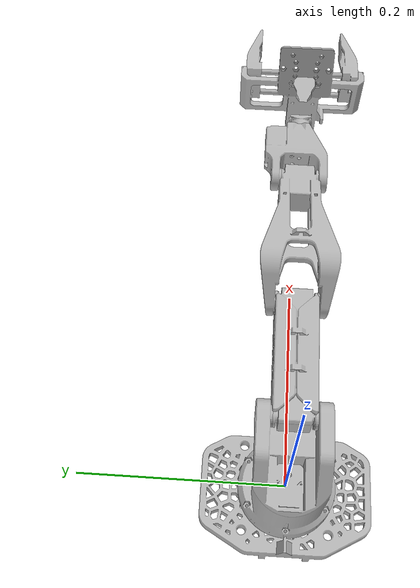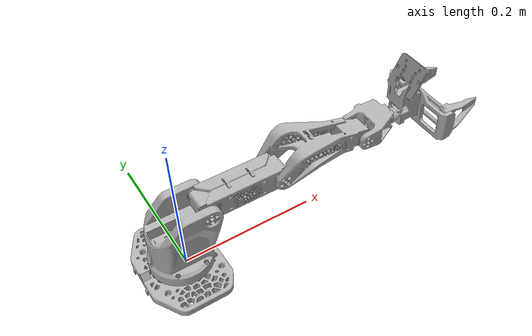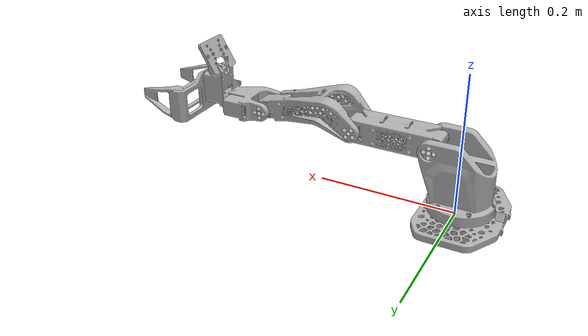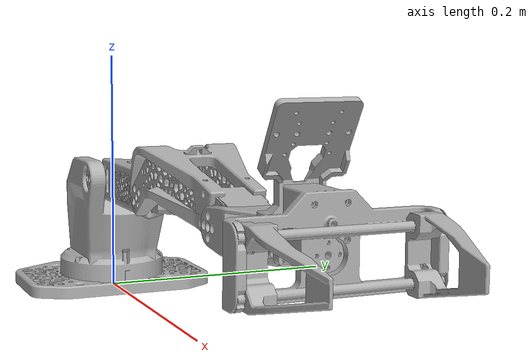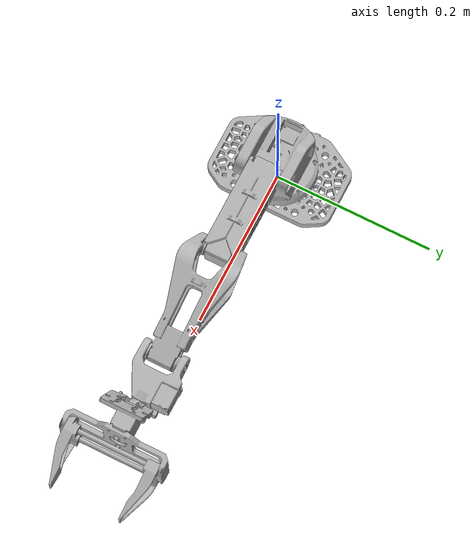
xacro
<?xml version="1.0" ?>
<!-- PROVISIONAL SIMULATION INERTIALS: measured total; assumed mass placement, original CAD centers and scaled tensors. NOT FOR HARDWARE FEEDFORWARD. -->
<robot name="so-arm" xmlns:xacro="http://www.ros.org/wiki/xacro">

<xacro:include filename="$(find so-arm_description)/urdf/materials.xacro" />
<xacro:include filename="$(find so-arm_description)/urdf/so-arm.trans" />

<link name="base_link">
  <inertial>
    <origin xyz="-0.009406544829903572 6.007217489668264e-05 0.008235205211362326" rpy="0 0 0"/>
    <mass value="0.285"/>
    <inertia ixx="0.000448204647604516" iyy="0.000271602923134611" izz="0.000696356393234993" ixy="4.78595459268037e-07" iyz="0" ixz="-2.15367956670616e-06"/>
  </inertial>
  <visual>
    <origin xyz="0 0 0" rpy="0 0 0"/>
    <geometry>
      <mesh filename="package://so-arm_description/meshes/base_link.stl" scale="0.001 0.001 0.001"/>
    </geometry>
    <material name="silver"/>
  </visual>
  <collision>
    <origin xyz="0 0 0" rpy="0 0 0"/>
    <geometry>
      <mesh filename="package://so-arm_description/meshes/base_link.stl" scale="0.001 0.001 0.001"/>
    </geometry>
  </collision>
</link>

<link name="link1_1">
  <inertial>
    <origin xyz="0.005464885749287921 -1.2675422346798214e-05 0.03240352538520035" rpy="0 0 0"/>
    <mass value="0.398"/>
    <inertia ixx="0.000440211154263732" iyy="0.000498657267965414" izz="0.000429729936305072" ixy="1.77647762011191e-07" iyz="1.77647762011191e-07" ixz="-6.44861376100624e-05"/>
  </inertial>
  <visual>
    <origin xyz="0.006 0.0 -0.025" rpy="0 0 0"/>
    <geometry>
      <mesh filename="package://so-arm_description/meshes/link1_1.stl" scale="0.001 0.001 0.001"/>
    </geometry>
    <material name="silver"/>
  </visual>
  <collision>
    <origin xyz="0.006 0.0 -0.025" rpy="0 0 0"/>
    <geometry>
      <mesh filename="package://so-arm_description/meshes/link1_1.stl" scale="0.001 0.001 0.001"/>
    </geometry>
  </collision>
</link>

<link name="link2_1">
  <inertial>
    <origin xyz="0.056505092817969824 0.017999730747229378 0.00011963824154033464" rpy="0 0 0"/>
    <mass value="0.137"/>
    <inertia ixx="3.22066856632768e-05" iyy="0.000216712783191879" izz="0.000220670384396265" ixy="2.18350411276453e-06" iyz="-0" ixz="0"/>
  </inertial>
  <visual>
    <origin xyz="-0.034 0.018 -0.098357" rpy="0 0 0"/>
    <geometry>
      <mesh filename="package://so-arm_description/meshes/link2_1.stl" scale="0.001 0.001 0.001"/>
    </geometry>
    <material name="silver"/>
  </visual>
  <collision>
    <origin xyz="-0.034 0.018 -0.098357" rpy="0 0 0"/>
    <geometry>
      <mesh filename="package://so-arm_description/meshes/link2_1.stl" scale="0.001 0.001 0.001"/>
    </geometry>
  </collision>
</link>

<link name="link3_1">
  <inertial>
    <origin xyz="0.07032572998340453 -0.0180163064459541 0.012228646336233537" rpy="0 0 0"/>
    <mass value="0.17"/>
    <inertia ixx="9.2000121755823e-05" iyy="0.000370560787257684" izz="0.000401967136799561" ixy="6.82746729171228e-07" iyz="-0" ixz="3.68683233752463e-05"/>
  </inertial>
  <visual>
    <origin xyz="-0.147001 -0.018 -0.098323" rpy="0 0 0"/>
    <geometry>
      <mesh filename="package://so-arm_description/meshes/link3_1.stl" scale="0.001 0.001 0.001"/>
    </geometry>
    <material name="silver"/>
  </visual>
  <collision>
    <origin xyz="-0.147001 -0.018 -0.098323" rpy="0 0 0"/>
    <geometry>
      <mesh filename="package://so-arm_description/meshes/link3_1.stl" scale="0.001 0.001 0.001"/>
    </geometry>
  </collision>
</link>

<link name="link4_1">
  <inertial>
    <origin xyz="0.03159105739141316 -0.010094336391021686 -0.0001713219399298166" rpy="0 0 0"/>
    <mass value="0.083"/>
    <inertia ixx="3.10491124013594e-05" iyy="2.98211814024356e-05" izz="4.85909838145568e-05" ixy="-4.91172399569528e-06" iyz="1.75418714131974e-07" ixz="3.50837428263948e-07"/>
  </inertial>
  <visual>
    <origin xyz="-0.286186 -0.018 -0.098287" rpy="0 0 0"/>
    <geometry>
      <mesh filename="package://so-arm_description/meshes/link4_1.stl" scale="0.001 0.001 0.001"/>
    </geometry>
    <material name="silver"/>
  </visual>
  <collision>
    <origin xyz="-0.286186 -0.018 -0.098287" rpy="0 0 0"/>
    <geometry>
      <mesh filename="package://so-arm_description/meshes/link4_1.stl" scale="0.001 0.001 0.001"/>
    </geometry>
  </collision>
</link>

<link name="link5_1">
  <inertial>
    <origin xyz="0.03741565773493527 -0.00011824563115753717 0.013731317481773586" rpy="0 0 0"/>
    <mass value="0.137572871484467"/>
    <inertia ixx="0.000191653259837162" iyy="0.000116219487111998" izz="0.000152847434498233" ixy="-7.91955619161828e-07" iyz="1.97988904790457e-07" ixz="1.80169903359316e-05"/>
  </inertial>
  <visual>
    <origin xyz="-0.34538 1e-06 -0.098247" rpy="0 0 0"/>
    <geometry>
      <mesh filename="package://so-arm_description/meshes/link5_1.stl" scale="0.001 0.001 0.001"/>
    </geometry>
    <material name="silver"/>
  </visual>
  <collision>
    <origin xyz="-0.34538 1e-06 -0.098247" rpy="0 0 0"/>
    <geometry>
      <mesh filename="package://so-arm_description/meshes/link5_1.stl" scale="0.001 0.001 0.001"/>
    </geometry>
  </collision>
</link>

<!-- Negative-Y / right claw. -->
<link name="clamp2_1">
  <inertial>
    <origin xyz="0.015089611475487041 -0.05201855841456542 -0.014925662643598639" rpy="0 0 0"/>
    <mass value="0.00721356429960662"/>
    <inertia ixx="1.74347694510058e-06" iyy="4.88173544628163e-06" izz="3.39978004294613e-06" ixy="3.48695389020116e-07" iyz="0" ixz="-8.71738472550291e-08"/>
  </inertial>
  <visual>
    <origin xyz="-0.409377 -0.044101 -0.112532" rpy="0 0 0"/>
    <geometry>
      <mesh filename="package://so-arm_description/meshes/clamp2_1.stl" scale="0.001 0.001 0.001"/>
    </geometry>
    <material name="silver"/>
  </visual>
  <collision>
    <origin xyz="-0.409377 -0.044101 -0.112532" rpy="0 0 0"/>
    <geometry>
      <mesh filename="package://so-arm_description/meshes/clamp2_1.stl" scale="0.001 0.001 0.001"/>
    </geometry>
  </collision>
</link>

<!-- Positive-Y / left claw. -->
<link name="clamp1_1">
  <inertial>
    <origin xyz="0.015089611631717736 0.052019408526296096 -0.01364049960713011" rpy="0 0 0"/>
    <mass value="0.00721356421592687"/>
    <inertia ixx="1.74347694510058e-06" iyy="4.88173544628163e-06" izz="3.39978004294613e-06" ixy="-3.48695389020116e-07" iyz="0" ixz="8.71738472550291e-08"/>
  </inertial>
  <visual>
    <origin xyz="-0.409377 0.043099 -0.112532" rpy="0 0 0"/>
    <geometry>
      <mesh filename="package://so-arm_description/meshes/clamp1_1.stl" scale="0.001 0.001 0.001"/>
    </geometry>
    <material name="silver"/>
  </visual>
  <collision>
    <origin xyz="-0.409377 0.043099 -0.112532" rpy="0 0 0"/>
    <geometry>
      <mesh filename="package://so-arm_description/meshes/clamp1_1.stl" scale="0.001 0.001 0.001"/>
    </geometry>
  </collision>
</link>

<joint name="base_to_link1" type="revolute">
  <origin xyz="-0.006 0.0 0.025" rpy="0 0 0"/>
  <parent link="base_link"/>
  <child link="link1_1"/>
  <axis xyz="-0.0 -0.0 -1.0"/>
  <limit upper="3.071779" lower="-3.071779" effort="100" velocity="100"/>
</joint>

<joint name="link1_to_link2" type="revolute">
  <origin xyz="0.04 -0.018 0.073357" rpy="0 0 0"/>
  <parent link="link1_1"/>
  <child link="link2_1"/>
  <axis xyz="0.0 -1.0 0.0"/>
  <limit upper="3.159046" lower="-0.750492" effort="100" velocity="100"/>
</joint>

<joint name="link2_to_link3" type="revolute">
  <origin xyz="0.113001 0.036 -3.4e-05" rpy="0 0 0"/>
  <parent link="link2_1"/>
  <child link="link3_1"/>
  <axis xyz="0.0 -1.0 -0.0"/>
  <limit upper="1.343904" lower="-2.897247" effort="100" velocity="100"/>
</joint>

<joint name="link3_to_link4" type="revolute">
  <origin xyz="0.139185 0.0 -3.6e-05" rpy="0 0 0"/>
  <parent link="link3_1"/>
  <child link="link4_1"/>
  <axis xyz="-0.0 1.0 0.0"/>
  <limit upper="1.937315" lower="-1.48353" effort="100" velocity="100"/>
</joint>

<joint name="link4_to_link5" type="revolute">
  <origin xyz="0.059194 -0.018001 -4e-05" rpy="0 0 0"/>
  <parent link="link4_1"/>
  <child link="link5_1"/>
  <axis xyz="-1.0 -0.0 0.0"/>
  <limit upper="2.844887" lower="-2.879793" effort="100" velocity="100"/>
</joint>

<joint name="clamp1" type="prismatic">
  <!-- The joint frame is placed at the fully-open pose. -->
  <origin xyz="0.063997 -0.000498 0.014285" rpy="0 0 0"/>
  <parent link="link5_1"/>
  <child link="clamp1_1"/>
  <axis xyz="0.0 -1.0 0.0"/>
  <limit upper="0.0425" lower="0.0" effort="100" velocity="100"/>
</joint>

<joint name="clamp2" type="prismatic">
  <!-- The joint frame is placed at the fully-open pose. -->
  <origin xyz="0.063997 0.001502 0.014285" rpy="0 0 0"/>
  <parent link="link5_1"/>
  <child link="clamp2_1"/>
  <!-- Positive displacement closes both claws. -->
  <axis xyz="0.0 1.0 0.0"/>
  <limit upper="0.0425" lower="0.0" effort="100" velocity="100"/>
  <!-- The opposite axis makes the same displacement mirror clamp1 physically. -->
  <mimic joint="clamp1" multiplier="1.0" offset="0.0"/>
</joint>

</robot>

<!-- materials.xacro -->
<robot name="so-arm" xmlns:xacro="http://www.ros.org/wiki/xacro" >

<material name="silver">
  <color rgba="0.700 0.700 0.700 1.000"/>
</material>

</robot>
